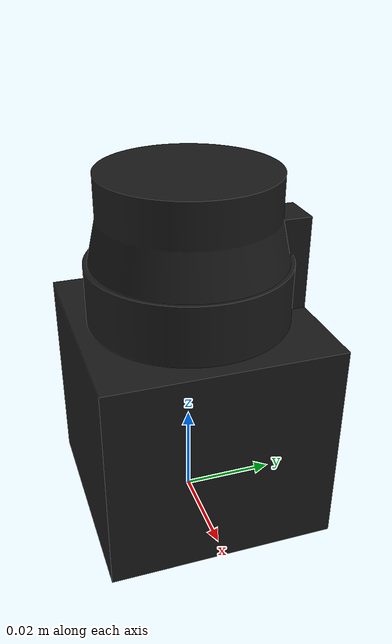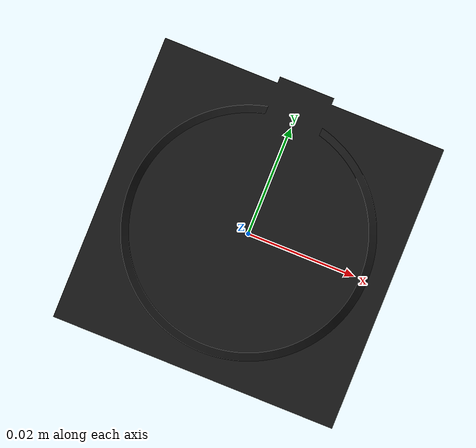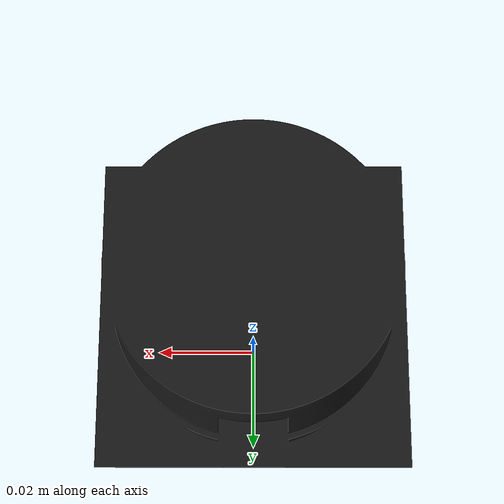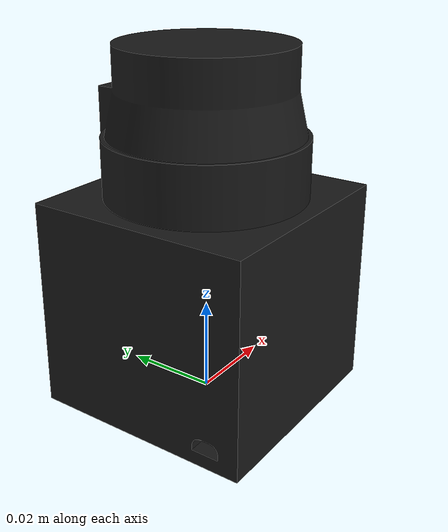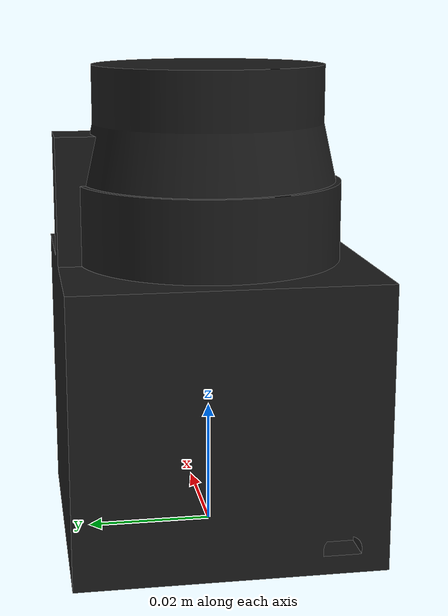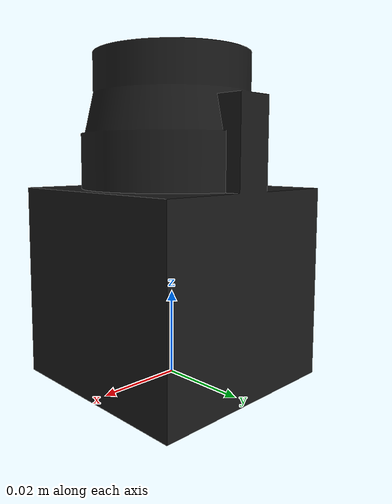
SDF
<?xml version="1.0" encoding="UTF-8"?>
<sdf version="1.9">
    <model name="lidar_240">
        <link name="lidar_link">
            <inertial>
                <mass>0.015</mass>
                <inertia>
                    <ixx>0.001</ixx><ixy>0</ixy><ixz>0</ixz>
                    <iyy>0.001</iyy><iyz>0</iyz>
                    <izz>0.001</izz>
                </inertia>
            </inertial>
            <visual name="visual">
                <pose>0 0 0 1.57 0 0</pose>
                <geometry>
                    <mesh>
                        <uri>model://lidar_240/meshes/kutu.stl</uri>
                        <scale>1 1 1</scale>
                    </mesh>
                </geometry>
                <material>
                    <diffuse>0.1 0.1 0.1 1</diffuse>
                </material>
            </visual>

            <sensor name="lidar_240" type="gpu_lidar">
                <pose>0 0 0 0 0 0</pose>
                <topic>scan</topic>
                <update_rate>20</update_rate>
                <gz_frame_id>lidar_240_link</gz_frame_id>
                <lidar>
                    <scan>
                        <horizontal>
                            <samples>1080</samples>
                            <resolution>1</resolution>
                            <min_angle>-2.0944</min_angle>
                            <max_angle>2.0944</max_angle>
                        </horizontal>
                    </scan>
                    <range>
                        <min>0.10</min>
                        <max>10.0</max>
                        <resolution>0.01</resolution>
                    </range>
                    <noise>
                        <type>gaussian</type>
                        <mean>0.0</mean>
                        <stddev>0.01</stddev>
                    </noise>
                </lidar>
                <always_on>1</always_on>
                <visualize>true</visualize>
            </sensor>
        </link>
    </model>
</sdf>
